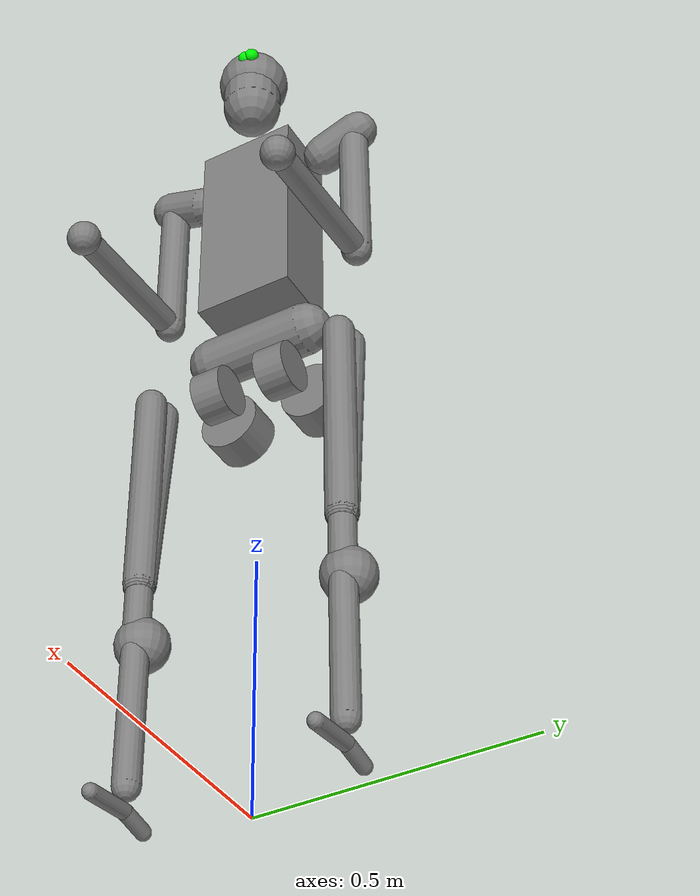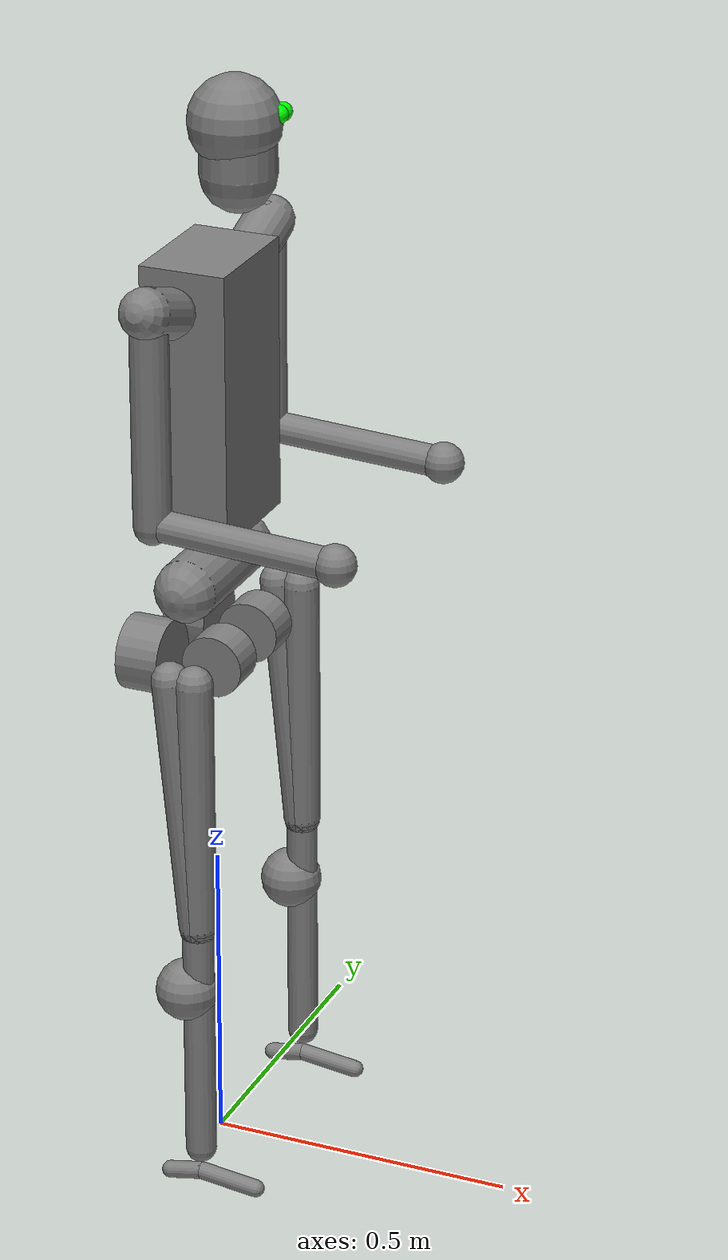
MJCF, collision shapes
<mujoco model="h1">
  <compiler angle="radian" meshdir="assets" autolimits="true"/>

  <statistic meansize="0.05"/>

  <default>
    <default class="h1">
      <default class="visual">
        <geom type="mesh" contype="0" conaffinity="0" group="2" material="black"/>
      </default>
      <default class="collision">
        <geom group="3" mass="0" density="0"/>
        <default class="foot">
          <geom type="capsule" size=".014"/>
          <default class="foot1">
            <geom fromto="-.035 0 -0.056 .02 0 -0.045"/>
          </default>
          <default class="foot2">
            <geom fromto=".02 0 -0.045 .115 0 -0.056"/>
          </default>
        </default>
      </default>
      <site size="0.001" rgba="0.5 0.5 0.5 0.3" group="4"/>
    </default>
  </default>

  <asset>
    <material name="black" rgba="0.1 0.1 0.1 1"/>
    <material name="white" rgba="1 1 1 1"/>

    <mesh file="pelvis.stl"/>
    <mesh file="left_hip_yaw_link.stl"/>
    <mesh file="left_hip_roll_link.stl"/>
    <mesh file="left_hip_pitch_link.stl"/>
    <mesh file="left_knee_link.stl"/>
    <mesh file="left_ankle_link.stl"/>
    <mesh file="right_hip_yaw_link.stl"/>
    <mesh file="right_hip_roll_link.stl"/>
    <mesh file="right_hip_pitch_link.stl"/>
    <mesh file="right_knee_link.stl"/>
    <mesh file="right_ankle_link.stl"/>
    <mesh file="torso_link.stl"/>
    <mesh file="left_shoulder_pitch_link.stl"/>
    <mesh file="left_shoulder_roll_link.stl"/>
    <mesh file="left_shoulder_yaw_link.stl"/>
    <mesh file="left_elbow_link.stl"/>
    <mesh file="right_shoulder_pitch_link.stl"/>
    <mesh file="right_shoulder_roll_link.stl"/>
    <mesh file="right_shoulder_yaw_link.stl"/>
    <mesh file="right_elbow_link.stl"/>
    <mesh file="logo_link.stl"/>
  </asset>

  <worldbody>
    <body name="pelvis" pos="0 0 1.06" childclass="h1">
      <light pos="0 0 2" mode="trackcom" castshadow="false"/>
      <camera name="tracking" pos="1.734 -1.135 .35" xyaxes="0.552 0.834 -0.000 -0.170 0.112 0.979" mode="trackcom"/>
      <inertial pos="-0.0004 3.7e-05 -0.046864" quat="0.497097 0.496809 -0.503132 0.502925"
        mass="5.983" diaginertia="0.0531565 0.0491678 0.00902583"/>
      <freejoint name="floating_base_joint"/>
      <geom class="visual" mesh="pelvis"/>
      <body name="left_hip_yaw_link" pos="0 0.0875 -0.1742">
        <inertial pos="-0.061433 1.7e-05 0.007627" quat="0.971162 0.000953788 0.238417 0.0007609"
          mass="2.965" diaginertia="0.00577917 0.00501769 0.00364268"/>
        <joint name="left_hip_yaw" axis="0 0 1" range="-0.43 0.43"/>
        <geom class="visual" mesh="left_hip_yaw_link"/>
        <geom name="left_hip_yaw_collision" size="0.06 0.035" pos="-0.067 0 0" quat="0.707123 0 0.70709 0" type="cylinder" class="collision"/>
        <body name="left_hip_roll_link" pos="0.039468 0 0">
          <inertial pos="-0.005276 -0.013573 4e-06" quat="0.532581 0.529488 0.465483 0.468322"
            mass="2.715" diaginertia="0.00438903 0.0034756 0.00305823"/>
          <joint name="left_hip_roll" axis="1 0 0" range="-0.43 0.43"/>
          <geom class="visual" mesh="left_hip_roll_link"/>
          <geom name="left_hip_roll_collision" class="collision" type="cylinder" size="0.05 0.03" quat="1 1 0 0" pos="0 -0.02 0"/>
          <body name="left_hip_pitch_link" pos="0 0.11536 0">
            <inertial pos="0.007636 -0.029298 -0.08267" quat="0.420065 0.00204392 -0.0653856 0.905133"
              mass="4.953" diaginertia="0.0968616 0.0962458 0.00678241"/>
            <joint name="left_hip_pitch" axis="0 1 0" range="-1.57 1.57"/>
            <geom class="visual" mesh="left_hip_pitch_link"/>
            <geom name="left_thigh1_collision" class="collision" type="capsule" size="0.03" fromto="0.02 0 -0.4 -0.02 0 0.02"/>
            <geom name="left_thigh2_collision" class="collision" type="capsule" size="0.03" fromto="0.02 0 -0.4 0.02 0 0.02"/>
            <body name="left_knee_link" pos="0 0 -0.4">
              <inertial pos="0.003406 -0.005279 -0.143702" quat="0.609574 -0.020817 -0.0265165 0.792012"
                mass="2.824" diaginertia="0.0245583 0.0238329 0.00314179"/>
              <joint name="left_knee" axis="0 1 0" range="-0.26 2.05"/>
              <geom class="visual" mesh="left_knee_link"/>
              <geom name="left_shin_collision" class="collision" type="capsule" size="0.025" fromto="0.02 0 -0.4 0.02 0 0"/>
              <geom name="left_linkage_collision" class="collision" type="sphere" size="0.05" pos="0 0 -0.115"/>
              <body name="left_ankle_link" pos="0 0 -0.4">
                <site name="left_foot" rgba="1 0 0 1" pos="0.05 0 -0.067"/>
                <site name="left_foot_toes" rgba="1 0 0 1" pos="0.19 0 -0.056"/>
                <site name="left_foot_heel" rgba="1 0 0 1" pos="-0.09 0 -0.056"/>
                <inertial pos="0.042537 0 -0.041674" quat="0.482872 0.51656 0.51656 0.482872"
                  mass="0.725" diaginertia="0.00329613 0.00315887 0.000223391"/>
                <joint name="left_ankle" axis="0 1 0" range="-0.87 0.52"/>
                <geom class="visual" mesh="left_ankle_link"/>
                <geom name="left_foot1_collision" class="foot1"/>
                <geom name="left_foot2_collision" class="foot2"/>
              </body>
            </body>
          </body>
        </body>
      </body>
      <body name="right_hip_yaw_link" pos="0 -0.0875 -0.1742">
        <inertial pos="-0.061433 -1.7e-05 0.007627" quat="0.971162 -0.000953788 0.238417 -0.0007609"
          mass="2.965" diaginertia="0.00577917 0.00501769 0.00364268"/>
        <joint name="right_hip_yaw" axis="0 0 1" range="-0.43 0.43"/>
        <geom class="visual" mesh="right_hip_yaw_link"/>
        <geom name="right_hip_yaw_collision" size="0.06 0.035" pos="-0.067 0 0" quat="0.707123 0 0.70709 0" type="cylinder" class="collision"/>
        <body name="right_hip_roll_link" pos="0.039468 0 0">
          <inertial pos="-0.005276 0.013573 4e-06" quat="0.468322 0.465483 0.529488 0.532581"
            mass="2.715" diaginertia="0.00438903 0.0034756 0.00305823"/>
          <joint name="right_hip_roll" axis="1 0 0" range="-0.43 0.43"/>
          <geom class="visual" mesh="right_hip_roll_link"/>
          <geom name="right_hip_roll_collision" class="collision" type="cylinder" size="0.05 0.03" quat="1 1 0 0" pos="0 0.02 0"/>
          <body name="right_hip_pitch_link" pos="0 -0.11536 0">
            <inertial pos="0.007636 0.029298 -0.08267" quat="0.905133 -0.0653856 0.00204392 0.420065"
              mass="4.953" diaginertia="0.0968616 0.0962458 0.00678241"/>
            <joint name="right_hip_pitch" axis="0 1 0" range="-1.57 1.57"/>
            <geom class="visual" mesh="right_hip_pitch_link"/>
            <geom name="right_thigh1_collision" class="collision" type="capsule" size="0.03" fromto="0.02 0 -0.4 -0.02 0 0.02"/>
            <geom name="right_thigh2_collision" class="collision" type="capsule" size="0.03" fromto="0.02 0 -0.4 0.02 0 0.02"/>
            <body name="right_knee_link" pos="0 0 -0.4">
              <inertial pos="0.003406 0.005279 -0.143702" quat="0.792012 -0.0265165 -0.020817 0.609574"
                mass="2.824" diaginertia="0.0245583 0.0238329 0.00314179"/>
              <joint name="right_knee" axis="0 1 0" range="-0.26 2.05"/>
              <geom class="visual" mesh="right_knee_link"/>
              <geom name="right_shin_collision" class="collision" type="capsule" size="0.025" fromto="0.02 0 -0.4 0.02 0 0"/>
              <geom name="right_linkage_collision" class="collision" type="sphere" size="0.05" pos="0 0 -0.115"/>
              <body name="right_ankle_link" pos="0 0 -0.4">
                <site name="right_foot" rgba="1 0 0 1" pos="0.05 0 -0.067"/>
                <site name="right_foot_toes" rgba="1 0 0 1" pos=".19 0 -0.056"/>
                <site name="right_foot_heel" rgba="1 0 0 1" pos="-.09 0 -0.056"/>
                <inertial pos="0.042537 0 -0.041674" quat="0.482872 0.51656 0.51656 0.482872"
                  mass="0.725" diaginertia="0.00329613 0.00315887 0.000223391"/>
                <joint name="right_ankle" axis="0 1 0" range="-0.87 0.52"/>
                <geom class="visual" mesh="right_ankle_link"/>
                <geom name="right_foot1_collision" class="foot1"/>
                <geom name="right_foot2_collision" class="foot2"/>
              </body>
            </body>
          </body>
        </body>
      </body>
      <body name="torso_link">
        <inertial pos="0.000489062 0.00279701 0.20484" quat="0.999989 -0.00130817 -0.00282212 -0.00349117"
          mass="17.789" diaginertia="0.487318 0.409631 0.127837"/>
        <joint name="torso" axis="0 0 1" range="-2.35 2.35"/>
        <geom class="visual" mesh="torso_link"/>
        <geom class="visual" material="white" mesh="logo_link"/>
        <geom name="head_collision" class="collision" type="capsule" size="0.06" fromto="0.05 0 0.68 0.05 0 0.6"/>
        <geom name="helmet_collision" class="collision" type="sphere" size="0.073" pos="0.045 0 0.68"/>
        <geom name="torso_collision" class="collision" type="box" size="0.07 0.1 0.22" pos="0 0 0.25"/>
        <geom name="hip_collision" class="collision" type="capsule" size="0.05" fromto="0 -0.1 -0.05 0 0.1 -0.05"/>
        <site name="imu" size="0.01" pos="-0.04452 -0.01891 0.27756"/>
        <body name="camera_d435_depth" pos="0.108485 0.0175 0.693171" quat="0.237224 -0.666125 0.666128 -0.237225">
          <geom class="visual" type="sphere" size="0.015" rgba="0 1 0 1"/>
          <body name="camera_frame_depth" pos="0 0 0" quat="0 0 0 1">
            <camera name="camera_d435_depth" pos="0 0 0" quat="0 1 0 0" resolution="1280 720"
              sensorsize="0.00360 0.00210" focal="0.00193 0.00193"/>
          </body>
        </body>
        <body name="camera_d435_rgb" pos="0.108485 0.0325 0.693171" quat="0.237224 -0.666125 0.666128 -0.237225">
          <geom class="visual" type="sphere" size="0.015" rgba="0 1 0 1"/>
          <body name="camera_frame_rgb" pos="0 0 0" quat="0 0 0 1">
            <camera name="camera_d435_rgb" pos="0 0 0" quat="0 1 0 0" resolution="1280 720"
              sensorsize="0.00454 0.00256" focal="0.00193 0.00193"/>
          </body>
        </body>
        <body name="lidar_mid360" pos="0.03 0 0.674929" quat="0.99262 0 0.121263 0">
          <geom class="visual" type="sphere" size="0.02" rgba="0 1 0 1"/>
        </body>
        <body name="left_shoulder_pitch_link" pos="0.0055 0.15535 0.42999" quat="0.976296 0.216438 0 0">
          <inertial pos="0.005045 0.053657 -0.015715" quat="0.814858 0.579236 -0.0201072 -0.00936488"
            mass="1.142" diaginertia="0.00129936 0.000987113 0.000858198"/>
          <joint name="left_shoulder_pitch" axis="0 1 0" range="-2.87 2.87"/>
          <geom class="visual" mesh="left_shoulder_pitch_link"/>
          <body name="left_shoulder_roll_link" pos="-0.0055 0.0565 -0.0165" quat="0.976296 -0.216438 0 0">
            <inertial pos="0.000679 0.00115 -0.094076" quat="0.732491 0.00917179 0.0766656 0.676384"
              mass="0.852" diaginertia="0.00170388 0.00158256 0.00100336"/>
            <joint name="left_shoulder_roll" axis="1 0 0" range="-0.34 3.11"/>
            <geom class="visual" mesh="left_shoulder_roll_link"/>
            <geom name="left_shoulder_roll_collision" class="collision" type="capsule" size="0.04" fromto="0 0.01 0.008 0 -0.07 -0.02"/>
            <body name="left_shoulder_yaw_link" pos="0 0 -0.1343">
              <inertial pos="0.01365 0.002767 -0.16266" quat="0.703042 -0.0331229 -0.0473362 0.708798"
                mass="0.862" diaginertia="0.00408038 0.00370367 0.000622687"/>
              <joint name="left_shoulder_yaw" axis="0 0 1" range="-1.3 4.45"/>
              <geom class="visual" mesh="left_shoulder_yaw_link"/>
              <geom name="left_shoulder_yaw_collision" class="collision" type="capsule" size="0.03" fromto="0 0 0.15 0 0 -0.2"/>
              <body name="left_elbow_link" pos="0.0185 0 -0.198">
                <inertial pos="0.164862 0.000118 -0.015734" quat="0.0765232 0.720327 0.0853116 0.684102"
                  mass="0.745" diaginertia="0.00601829 0.00600579 0.000408305"/>
                <joint name="left_elbow" axis="0 1 0" range="-1.25 2.61"/>
                <geom class="visual" mesh="left_elbow_link"/>
                <geom name="left_elbow_collision" class="collision" type="capsule" size="0.025" fromto="0 0 0 0.28 0 -0.015"/>
                <geom name="left_hand_collision" class="collision" type="sphere" size="0.033" pos="0.28 0 -0.015"/>
              </body>
            </body>
          </body>
        </body>
        <body name="right_shoulder_pitch_link" pos="0.0055 -0.15535 0.42999" quat="0.976296 -0.216438 0 0">
          <inertial pos="0.005045 -0.053657 -0.015715" quat="0.579236 0.814858 0.00936488 0.0201072"
            mass="1.142" diaginertia="0.00129936 0.000987113 0.000858198"/>
          <joint name="right_shoulder_pitch" axis="0 1 0" range="-2.87 2.87"/>
          <geom class="visual" mesh="right_shoulder_pitch_link"/>
          <body name="right_shoulder_roll_link" pos="-0.0055 -0.0565 -0.0165" quat="0.976296 0.216438 0 0">
            <inertial pos="0.000679 -0.00115 -0.094076" quat="0.676384 0.0766656 0.00917179 0.732491"
              mass="0.852" diaginertia="0.00170388 0.00158256 0.00100336"/>
            <joint name="right_shoulder_roll" axis="1 0 0" range="-3.11 0.34"/>
            <geom class="visual" mesh="right_shoulder_roll_link"/>
            <geom name="right_shoulder_roll_collision" class="collision" type="capsule" size="0.04" fromto="0 -0.01 0.008 0 0.07 -0.02"/>
            <body name="right_shoulder_yaw_link" pos="0 0 -0.1343">
              <inertial pos="0.01365 -0.002767 -0.16266" quat="0.708798 -0.0473362 -0.0331229 0.703042"
                mass="0.862" diaginertia="0.00408038 0.00370367 0.000622687"/>
              <joint name="right_shoulder_yaw" axis="0 0 1" range="-4.45 1.3"/>
              <geom class="visual" mesh="right_shoulder_yaw_link"/>
              <geom name="right_shoulder_yaw_collision" class="collision" type="capsule" size="0.03" fromto="0 0 0.15 0 0 -0.2"/>
              <body name="right_elbow_link" pos="0.0185 0 -0.198">
                <inertial pos="0.164862 -0.000118 -0.015734" quat="-0.0765232 0.720327 -0.0853116 0.684102"
                  mass="0.745" diaginertia="0.00601829 0.00600579 0.000408305"/>
                <joint name="right_elbow" axis="0 1 0" range="-1.25 2.61"/>
                <geom class="visual" mesh="right_elbow_link"/>
                <geom name="right_elbow_collision" class="collision" type="capsule" size="0.025" fromto="0 0 0 0.28 0 -0.015"/>
                <geom name="right_hand_collision" class="collision" type="sphere" size="0.033" pos="0.28 0 -0.015"/>
              </body>
            </body>
          </body>
        </body>
      </body>
    </body>
  </worldbody>

  <contact>
    <exclude body1="torso_link" body2="left_shoulder_roll_link"/>
    <exclude body1="torso_link" body2="right_shoulder_roll_link"/>
  </contact>

  <sensor>
    <gyro name="imu_ang_vel" site="imu"/>
    <velocimeter name="imu_lin_vel" site="imu"/>
    <accelerometer name="imu_lin_acc" site="imu"/>
    <subtreeangmom name="root_angmom" body="pelvis"/>
  </sensor>

</mujoco>
